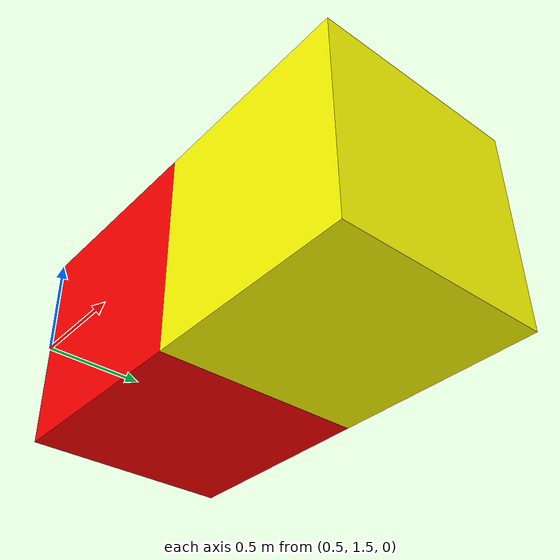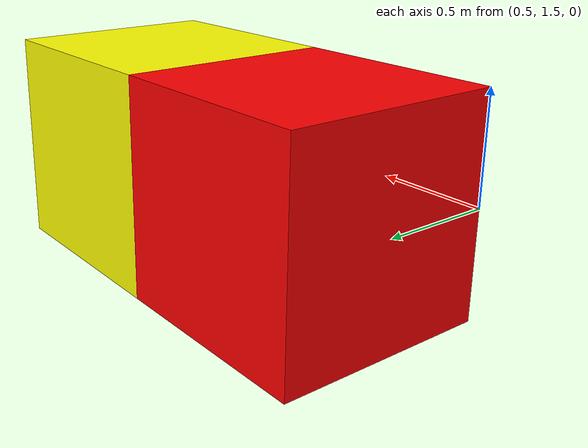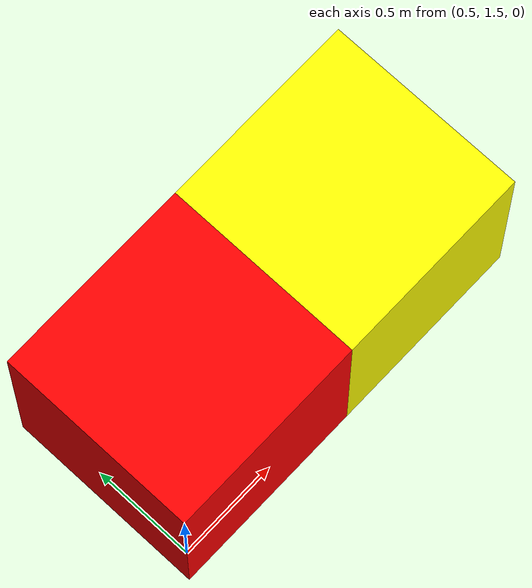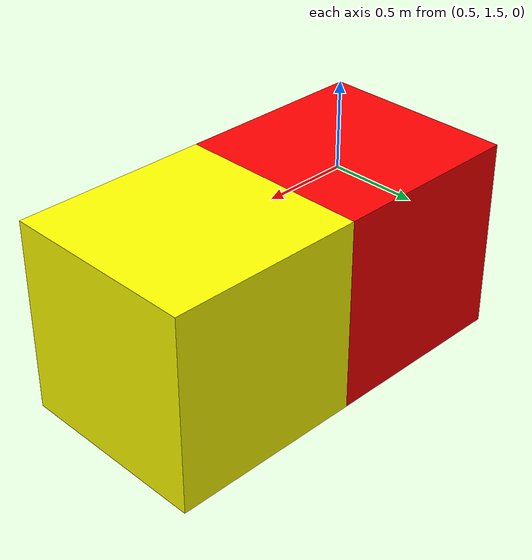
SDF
<?xml version="1.0" ?>
<sdf version="1.6">

    <model name="box">
      <pose>0 0 0 0 0 0</pose>
      <link name="box_1">
        <pose>1 2 0 0 0 0</pose>
        <inertial>
          <inertia>
            <ixx>0.16666</ixx>
            <ixy>0</ixy>
            <ixz>0</ixz>
            <iyy>0.16666</iyy>
            <iyz>0</iyz>
            <izz>0.16666</izz>
          </inertia>
          <mass>1.0</mass>
        </inertial>
        <collision name="box_collision">
          <geometry>
            <box>
              <size>1 1 1</size>
            </box>
          </geometry>
        </collision>

        <visual name="box_visual">
          <geometry>
            <box>
              <size>1 1 1</size>
            </box>
          </geometry>
          <material>
            <ambient>1 0 0 1</ambient>
            <diffuse>1 0 0 1</diffuse>
            <specular>1 0 0 1</specular>
          </material>
        </visual>
      </link>

      <link name="box_2">
        <pose>2 2 0 0 0 0</pose>
        <inertial>
          <inertia>
            <ixx>0.16666</ixx>
            <ixy>0</ixy>
            <ixz>0</ixz>
            <iyy>0.16666</iyy>
            <iyz>0</iyz>
            <izz>0.16666</izz>
          </inertia>
          <mass>2.0</mass>
        </inertial>

        <collision name="box_collision">
          <geometry>
            <box>
              <size>1 1 1</size>
            </box>
          </geometry>
        </collision>

        <visual name="box_visual">
          <geometry>
            <box>
              <size>1 1 1</size>
            </box>
          </geometry>
          <material>
            <ambient>1 1 0 1</ambient>
            <diffuse>1 1 0 1</diffuse>
            <specular>1 1 0 1</specular>
          </material>
        </visual>
      </link>

    </model>
</sdf>
